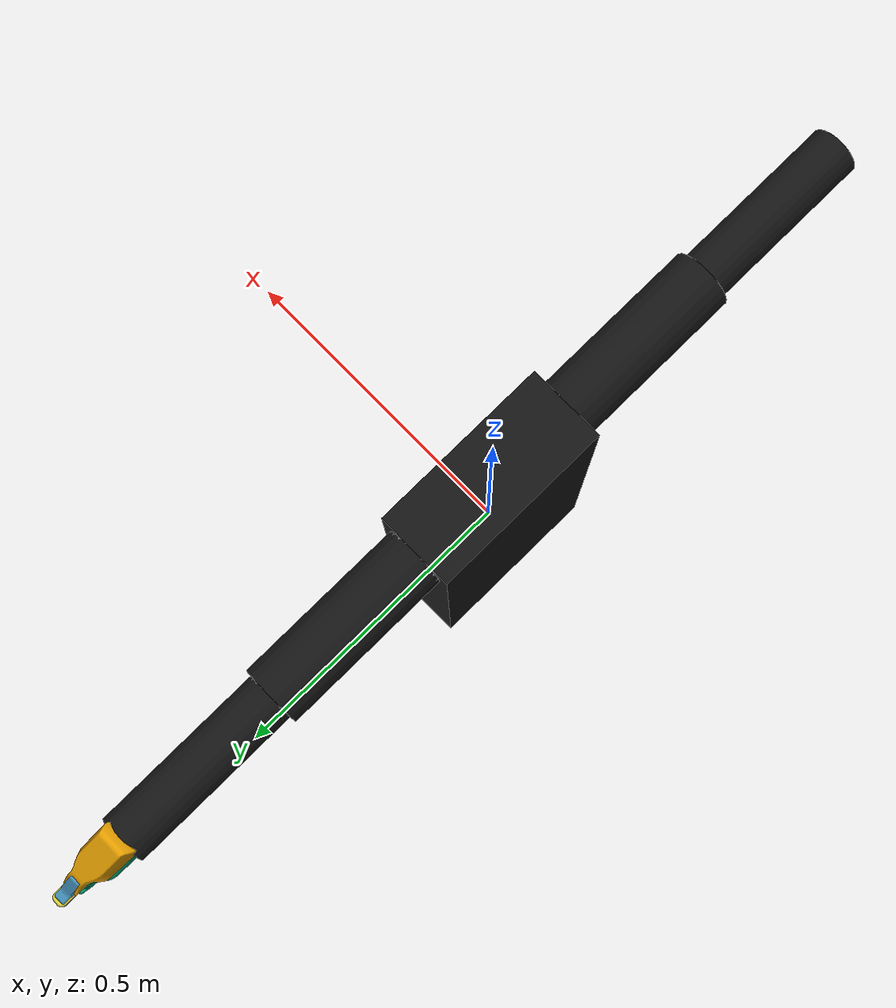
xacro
<?xml version="1.0"?>
<robot xmlns:sensor="http://playerstage.sourceforge.net/gazebo/xmlschema/#sensor"
	 xmlns:controller="http://playerstage.sourceforge.net/gazebo/xmlschema/#controller"
	 xmlns:interface="http://playerstage.sourceforge.net/gazebo/xmlschema/#interface"
     xmlns:xacro="http://ros.org/wiki/xacro"
	 name="human">

  <xacro:property name="M_PI" value="3.14159"/>
  <xacro:property name="M_PI_2" value="1.570795"/>
  <xacro:property name="ARM_MASS" value="1.0"/>

	<xacro:macro name="black">
		<material name="black">
			<color rgba="0.1 0.1 0.1 0.9"/>
		</material>
	</xacro:macro>

	<xacro:macro name="white">
		<material name="white">
			<color rgba="0.8 0.8 0.8 0.9"/>
		</material>
	</xacro:macro>

  <xacro:macro name="default_gazebo" params="name material">
 		<gazebo reference="${name}">
			<material>${material}</material>
			<selfCollide>false</selfCollide>
			<turnGravityOff>True</turnGravityOff>
		  <mu1 value="1.0" />
		  <mu2 value="1.0" />
		  <kp  value="1000000.0" />
		  <kd  value="1000.0" />
		</gazebo>
  </xacro:macro>

  <xacro:macro name="default_inertial" params="mass">
  	<inertial>
	  	<mass value="${mass}" />
		  <inertia ixx="0.001" ixy="0.0" ixz="0.0"
                   iyy="0.001" iyz="0.0"
                   izz="0.001" />
		</inertial>
  </xacro:macro>

	<xacro:macro name="shape_cylinder" params="name l r xyz rpy mass material *rviz_color">
		<link name="${name}">
			<visual>
				<origin xyz="${xyz}" rpy="${rpy}" />
				<geometry>
					<cylinder length="${l}" radius="${r}" />
				</geometry>
			  <xacro:insert_block name="rviz_color" />
      </visual>
      <collision>
				<origin xyz="${xyz}" rpy="${rpy}" />
				<geometry>
					<cylinder length="${l}" radius="${r}" />
				</geometry>
      </collision>
      <xacro:default_inertial mass="${mass}" />
    </link>
    <xacro:default_gazebo name="${name}" material="${material}" />
	</xacro:macro>

	<xacro:macro name="shape_sphere" params="name r xyz rpy mass material *rviz_color">
		<link name="${name}">
			<visual>
				<origin xyz="${xyz}" rpy="${rpy}" />
				<geometry>
					<sphere radius="${r}" />
				</geometry>
			  <xacro:insert_block name="rviz_color" />
      </visual>
      <collision>
				<origin xyz="${xyz}" rpy="${rpy}" />
				<geometry>
					<sphere radius="${r}" />
				</geometry>
      </collision>
      <xacro:default_inertial mass="${mass}" />
    </link>
    <xacro:default_gazebo name="${name}" material="${material}" />
	</xacro:macro>

	<xacro:macro name="shape_box" params="name lwh xyz rpy mass material *rviz_color">
		<link name="${name}">
			<visual>
				<origin xyz="${xyz}" rpy="${rpy}" />
				<geometry>
					<box size="${lwh}" />
				</geometry>
			  <xacro:insert_block name="rviz_color" />
      </visual>
      <collision>
				<origin xyz="${xyz}" rpy="${rpy}" />
					<geometry>
						<box size="${lwh}" />
					</geometry>
      </collision>
      <xacro:default_inertial mass="${mass}" />
    </link>
    <xacro:default_gazebo name="${name}" material="${material}" />
	</xacro:macro>

  <xacro:shape_box name="base_footprint" lwh="0 0 0" xyz="0 0 0" rpy="0 0 0" mass="0.001" material="Gazebo/FlatBlack">
    <xacro:black />
  </xacro:shape_box>

  <xacro:shape_box name="torso_x" lwh="0.0 0.0 0.0" xyz="0 0 0" rpy="0 0 0" mass="0.001" material="Gazebo/FlatBlack">
		<xacro:black />
  </xacro:shape_box>

  <xacro:shape_box name="torso_y" lwh="0.0 0.0 0.0" xyz="0 0 0" rpy="0 0 0" mass="0.001" material="Gazebo/FlatBlack">
		<xacro:black />
  </xacro:shape_box>

  <xacro:shape_box name="torso_z" lwh="0.0 0.0 0.0" xyz="0 0 0" rpy="0 0 0" mass="0.001" material="Gazebo/FlatBlack">
		<xacro:black />
  </xacro:shape_box>

  <xacro:shape_box name="torso_home" lwh="0.0 0.0 0.0" xyz="0 0 0" rpy="0 0 0" mass="0.001" material="Gazebo/FlatBlack">
		<xacro:black />
  </xacro:shape_box>

  <joint name="base_footprint_to_torso_x" type="prismatic">
    <parent link="base_footprint"/>
    <child link="torso_x"/>
    <origin xyz="0 0 0" rpy="0 0 0" />
    <axis xyz="1 0 0" />
  </joint>

  <joint name="torso_x_to_torso_y" type="prismatic">
    <parent link="torso_x"/>
    <child link="torso_y"/>
    <origin xyz="0 0 0" rpy="0 0 0" />
    <axis xyz="0 1 0" />
    <!--limit upper="2" lower="-2" effort="100" velocity="5" /-->
  </joint>

  <joint name="torso_y_to_torso_z" type="prismatic">
    <parent link="torso_y"/>
    <child link="torso_z"/>
    <origin xyz="0 0 0" rpy="0 0 0" />
    <axis xyz="0 0 1" />
  </joint>

  <joint name="torso_z_to_home" type="continuous"><!--fixed rotation-->
    <parent link="torso_z"/>
    <child link="torso_home"/>
    <origin xyz="0 0 0" rpy="${M_PI_2} 0 ${M_PI_2}" />
  </joint>

  <xacro:shape_box name="torso_roll" lwh="0.0 0.0 0.0" xyz="0 0 0" rpy="0 0 0" mass="0.001" material="Gazebo/FlatBlack">
		<xacro:black />
  </xacro:shape_box>

  <xacro:shape_box name="torso_pitch" lwh="0.0 0.0 0.0" xyz="0 0 0" rpy="0 0 0" mass="0.001" material="Gazebo/FlatBlack">
		<xacro:black />
  </xacro:shape_box>

  <xacro:shape_box name="torso_yaw" lwh="0.30 0.60 0.13" xyz="0 0 0" rpy="0 0 0" mass="0.001" material="Gazebo/FlatBlack">
		<xacro:black />
  </xacro:shape_box>

  <joint name="torso_home_to_roll" type="continuous">
    <parent link="torso_home"/>
    <child link="torso_roll"/>
    <origin xyz="0 0 0" rpy="0 0 0" />
    <axis xyz="0 0 1" />
  </joint>

  <joint name="torso_roll_to_pitch" type="continuous">
    <parent link="torso_roll"/>
    <child link="torso_pitch"/>
    <origin xyz="0 0 0" rpy="0 0 0" />
    <axis xyz="1 0 0" />
  </joint>

  <joint name="torso_pitch_to_yaw" type="continuous">
    <parent link="torso_pitch"/>
    <child link="torso_yaw"/>
    <origin xyz="0 0 0" rpy="0 0 0" />
    <axis xyz="0 1 0" />
  </joint>

  <xacro:shape_sphere name="r_shoulder_home" r="0.0" xyz="0 0 0" rpy="0 0 0" mass="0.001" material="Gazebo/FlatWhite">
		<xacro:white />
  </xacro:shape_sphere>

  <xacro:shape_sphere name="r_shoulder_yaw" r="0.0" xyz="0 0 0" rpy="0 0 0" mass="0.001" material="Gazebo/FlatWhite">
		<xacro:white />
  </xacro:shape_sphere>

  <xacro:shape_sphere name="r_shoulder_pitch" r="0.0" xyz="0 0 0" rpy="0 0 0" mass="0.001" material="Gazebo/FlatWhite">
		<xacro:white />
  </xacro:shape_sphere>

  <xacro:shape_sphere name="r_shoulder_roll" r="0.05" xyz="0 0 0" rpy="0 0 0" mass="0.001" material="Gazebo/FlatWhite">
		<xacro:white />
  </xacro:shape_sphere>

  <joint name="torso_yaw_to_r_shoulder_home" type="prismatic"><!--fixed translation-->
    <parent link="torso_yaw"/>
    <child link="r_shoulder_home"/>
    <origin xyz="0.15 0.25 0" rpy="0 0 0" />
  </joint>

  <joint name="r_shoulder_home_to_yaw" type="continuous">
    <parent link="r_shoulder_home"/>
    <child link="r_shoulder_yaw"/>
    <origin xyz="0 0 0" rpy="0 0 0" />
    <axis xyz="0 1 0" />
  </joint>

  <joint name="r_shoulder_yaw_to_pitch" type="continuous">
    <parent link="r_shoulder_yaw"/>
    <child link="r_shoulder_pitch"/>
    <origin xyz="0 0 0" rpy="0 0 0" />
    <axis xyz="1 0 0" />
  </joint>

  <joint name="r_shoulder_pitch_to_roll" type="continuous">
    <parent link="r_shoulder_pitch"/>
    <child link="r_shoulder_roll"/>
    <origin xyz="0 0 0" rpy="0 0 0" />
    <axis xyz="0 0 1" />
  </joint>

  <xacro:shape_sphere name="l_shoulder_home" r="0.0" xyz="0 0 0" rpy="0 0 0" mass="0.001" material="Gazebo/FlatWhite">
		<xacro:white />
  </xacro:shape_sphere>

  <xacro:shape_sphere name="l_shoulder_yaw" r="0.0" xyz="0 0 0" rpy="0 0 0" mass="0.001" material="Gazebo/FlatWhite">
		<xacro:white />
  </xacro:shape_sphere>

  <xacro:shape_sphere name="l_shoulder_pitch" r="0.0" xyz="0 0 0" rpy="0 0 0" mass="0.001" material="Gazebo/FlatWhite">
		<xacro:white />
  </xacro:shape_sphere>

  <xacro:shape_sphere name="l_shoulder_roll" r="0.05" xyz="0 0 0" rpy="0 0 0" mass="0.001" material="Gazebo/FlatWhite">
		<xacro:white />
  </xacro:shape_sphere>

  <joint name="torso_yaw_to_l_shoulder_home" type="prismatic"><!--fixed translation-->
    <parent link="torso_yaw"/>
    <child link="l_shoulder_home"/>
    <origin xyz="-0.15 0.25 0" rpy="0 0 0" />
  </joint>

  <joint name="l_shoulder_home_to_yaw" type="continuous">
    <parent link="l_shoulder_home"/>
    <child link="l_shoulder_yaw"/>
    <origin xyz="0 0 0" rpy="0 0 0" />
    <axis xyz="0 1 0" />
  </joint>

  <joint name="l_shoulder_yaw_to_pitch" type="continuous">
    <parent link="l_shoulder_yaw"/>
    <child link="l_shoulder_pitch"/>
    <origin xyz="0 0 0" rpy="0 0 0" />
    <axis xyz="1 0 0" />
  </joint>

  <joint name="l_shoulder_pitch_to_roll" type="continuous">
    <parent link="l_shoulder_pitch"/>
    <child link="l_shoulder_roll"/>
    <origin xyz="0 0 0" rpy="0 0 0" />
    <axis xyz="0 0 1" />
  </joint>

  <xacro:shape_cylinder name="r_upper_arm" l="0.28" r="0.05" xyz="0 0 0" rpy="0 ${M_PI_2} 0" mass="0.001" material="Gazebo/FlatBlack">
		<xacro:black />
  </xacro:shape_cylinder>

  <joint name="r_shoulder_roll_to_r_upper_arm" type="prismatic"><!--fixed translation-->
    <parent link="r_shoulder_roll"/>
    <child link="r_upper_arm"/>
    <origin xyz="0.14 0 0" rpy="0 0 0" />
  </joint>

  <xacro:shape_sphere name="r_elbow_home" r="0.0" xyz="0 0 0" rpy="0 0 0" mass="0.001" material="Gazebo/FlatWhite">
		<xacro:white />
  </xacro:shape_sphere>

  <joint name="r_shoulder_roll_to_r_elbow_home" type="prismatic"><!--fixed translation-->
    <parent link="r_shoulder_roll"/>
    <child link="r_elbow_home"/>
    <origin xyz="0.28 0 0" rpy="0 0 0" />
  </joint>

  <xacro:shape_sphere name="r_elbow_pitch" r="0.04" xyz="0 0 0" rpy="0 0 0" mass="0.001" material="Gazebo/FlatWhite">
		<xacro:white />
  </xacro:shape_sphere>

  <joint name="r_elbow_home_to_pitch" type="continuous">
    <parent link="r_elbow_home"/>
    <child link="r_elbow_pitch"/>
    <origin xyz="0 0 0" rpy="0 0 0" />
    <axis xyz="0 1 0" />
  </joint>

  <xacro:shape_cylinder name="r_lower_arm" l="0.28" r="0.04" xyz="0 0 0" rpy="0 ${M_PI_2} 0 " mass="0.001" material="Gazebo/FlatBlack">
		<xacro:black />
  </xacro:shape_cylinder>

  <joint name="r_elbow_pitch_to_r_lower_arm" type="prismatic"><!--fixed translation-->
    <parent link="r_elbow_pitch"/>
    <child link="r_lower_arm"/>
    <origin xyz="0.14 0 0" rpy="0 0 0" />
  </joint>

  <xacro:shape_sphere name="r_hand_home" r="0.0" xyz="0 0 0" rpy="0 0 0" mass="0.001" material="Gazebo/FlatWhite">
		<xacro:white />
  </xacro:shape_sphere>

  <xacro:shape_sphere name="r_hand_yaw" r="0.0" xyz="0 0 0" rpy="0 0 0" mass="0.001" material="Gazebo/FlatWhite">
		<xacro:white />
  </xacro:shape_sphere>

  <xacro:shape_sphere name="r_hand_pitch" r="0.0" xyz="0 0 0" rpy="0 0 0" mass="0.001" material="Gazebo/FlatWhite">
		<xacro:white />
  </xacro:shape_sphere>

  <xacro:shape_sphere name="r_hand_roll" r="0.0" xyz="0 0 0" rpy="0 0 0" mass="0.001" material="Gazebo/FlatWhite">
		<xacro:white />
  </xacro:shape_sphere>

  <joint name="r_elbow_pitch_to_r_hand_home" type="prismatic"><!--fixed translation-->
    <parent link="r_elbow_pitch"/>
    <child link="r_hand_home"/>
    <origin xyz="0.28 0 0" rpy="0 0 0" />
  </joint>

  <joint name="r_hand_home_to_yaw" type="continuous">
    <parent link="r_hand_home"/>
    <child link="r_hand_yaw"/>
    <origin xyz="0 0 0" rpy="0 0 0" />
    <axis xyz="0 0 1" />
  </joint>

  <joint name="r_hand_yaw_to_pitch" type="continuous">
    <parent link="r_hand_yaw"/>
    <child link="r_hand_pitch"/>
    <origin xyz="0 0 0" rpy="0 0 0" />
    <axis xyz="0 1 0" />
  </joint>

  <joint name="r_hand_pitch_to_roll" type="continuous">
    <parent link="r_hand_pitch"/>
    <child link="r_hand_roll"/>
    <origin xyz="0 0 0" rpy="0 0 0" />
    <axis xyz="1 0 0" />
  </joint>

	<xacro:macro name="gripper" params="prefix side reflect">
		<joint name="${prefix}_hand_roll_to_${prefix}_${side}_gripper" type="revolute">
			<axis xyz="0 0 ${reflect}"/>
			<limit effort="1000.0" lower="0.0" upper="0.548" velocity="0.5"/>
			<origin rpy="0 0 0" xyz="0 ${reflect*0.01} 0"/>
			<parent link="${prefix}_hand_roll"/>
			<child link="${prefix}_${side}_gripper"/>
		</joint>
		<link name="${prefix}_${side}_gripper">
			<visual>
					<origin rpy="${(reflect-1)/2*M_PI} 0 0" xyz="0 0 0"/>
				<geometry>
					<mesh filename="package://pr2_description/meshes/gripper_v0/l_finger.dae"/>
				</geometry>
			</visual>
			<collision>
				<geometry>
					<mesh filename="package://pr2_description/meshes/gripper_v0/l_finger.dae"/>
				</geometry>
					<origin rpy="${(reflect-1)/2*M_PI} 0 0" xyz="0 0 0"/>
			</collision>
			<xacro:default_inertial mass=".05"/>
		</link>
		<joint name="${prefix}_${side}_tip_joint" type="prismatic"><!--fixed joint cause problem in rviz!-->
			<parent link="${prefix}_${side}_gripper"/>
			<child link="${prefix}_${side}_tip"/>
		</joint>
		<link name="${prefix}_${side}_tip">
			<visual>
					<origin rpy="${(reflect-1)/2*M_PI} 0 0" xyz="0.09137 0.00495 0"/>
				<geometry>
					<mesh filename="package://pr2_description/meshes/gripper_v0/l_finger_tip.dae"/>
				</geometry>
			</visual>
			<collision>
				<geometry>
					<mesh filename="package://pr2_description/meshes/gripper_v0/l_finger_tip.dae"/>
				</geometry>
					<origin rpy="${(reflect-1)/2*M_PI} 0 0" xyz="0.09137 0.00495 0"/>
			</collision>
			<xacro:default_inertial mass=".05"/>
		</link>
	</xacro:macro>
	<xacro:gripper prefix="r" side="l" reflect="1" />
	<xacro:gripper prefix="r" side="r" reflect="-1" />

  <xacro:shape_cylinder name="l_upper_arm" l="0.28" r="0.05" xyz="0 0 0" rpy="0 ${M_PI_2} 0 " mass="0.001" material="Gazebo/FlatBlack">
		<xacro:black />
  </xacro:shape_cylinder>

  <joint name="l_shoulder_roll_to_l_upper_arm" type="prismatic"><!--fixed translation-->
    <parent link="l_shoulder_roll"/>
    <child link="l_upper_arm"/>
    <origin xyz="-0.14 0 0" rpy="0 0 0" />
  </joint>

  <xacro:shape_sphere name="l_elbow_home" r="0.0" xyz="0 0 0" rpy="0 0 0" mass="0.001" material="Gazebo/FlatWhite">
		<xacro:white />
  </xacro:shape_sphere>

  <joint name="l_shoulder_roll_to_l_elbow_home" type="prismatic"><!--fixed translation-->
    <parent link="l_shoulder_roll"/>
    <child link="l_elbow_home"/>
    <origin xyz="-0.28 0 0" rpy="0 0 0" />
  </joint>

  <xacro:shape_sphere name="l_elbow_pitch" r="0.04" xyz="0 0 0" rpy="0 0 0" mass="0.001" material="Gazebo/FlatWhite">
		<xacro:white />
  </xacro:shape_sphere>

  <joint name="l_elbow_home_to_pitch" type="continuous">
    <parent link="l_elbow_home"/>
    <child link="l_elbow_pitch"/>
    <origin xyz="0 0 0" rpy="0 0 0" />
    <axis xyz="0 1 0" />
  </joint>

  <xacro:shape_cylinder name="l_lower_arm" l="0.28" r="0.04" xyz="0 0 0" rpy="0 ${M_PI_2} 0 " mass="0.001" material="Gazebo/FlatBlack">
		<xacro:black />
  </xacro:shape_cylinder>

  <joint name="l_elbow_pitch_to_l_lower_arm" type="prismatic"><!--fixed translation-->
    <parent link="l_elbow_pitch"/>
    <child link="l_lower_arm"/>
    <origin xyz="-0.14 0 0" rpy="0 0 0" />
  </joint>

  <xacro:shape_sphere name="l_hand_home" r="0.0" xyz="0 0 0" rpy="0 0 0" mass="0.001" material="Gazebo/FlatWhite">
		<xacro:white />
  </xacro:shape_sphere>

  <xacro:shape_sphere name="l_hand_yaw" r="0.0" xyz="0 0 0" rpy="0 0 0" mass="0.001" material="Gazebo/FlatWhite">
		<xacro:white />
  </xacro:shape_sphere>

  <xacro:shape_sphere name="l_hand_pitch" r="0.0" xyz="0 0 0" rpy="0 0 0" mass="0.001" material="Gazebo/FlatWhite">
		<xacro:white />
  </xacro:shape_sphere>

  <xacro:shape_sphere name="l_hand_roll" r="0.0" xyz="0 0 0" rpy="0 0 0" mass="0.001" material="Gazebo/FlatWhite">
		<xacro:white />
  </xacro:shape_sphere>

  <joint name="l_elbow_pitch_to_l_hand_home" type="prismatic"><!--fixed translation-->
    <parent link="l_elbow_pitch"/>
    <child link="l_hand_home"/>
    <origin xyz="-0.28 0 0" rpy="0 0 0" />
  </joint>

  <joint name="l_hand_home_to_yaw" type="continuous">
    <parent link="l_hand_home"/>
    <child link="l_hand_yaw"/>
    <origin xyz="0 0 0" rpy="0 0 0" />
    <axis xyz="0 0 1" />
  </joint>

  <joint name="l_hand_yaw_to_pitch" type="continuous">
    <parent link="l_hand_yaw"/>
    <child link="l_hand_pitch"/>
    <origin xyz="0 0 0" rpy="0 0 0" />
    <axis xyz="0 1 0" />
  </joint>

  <joint name="l_hand_pitch_to_roll" type="continuous">
    <parent link="l_hand_pitch"/>
    <child link="l_hand_roll"/>
    <origin xyz="0 0 0" rpy="0 0 0" />
    <axis xyz="1 0 0" />
  </joint>

</robot>
